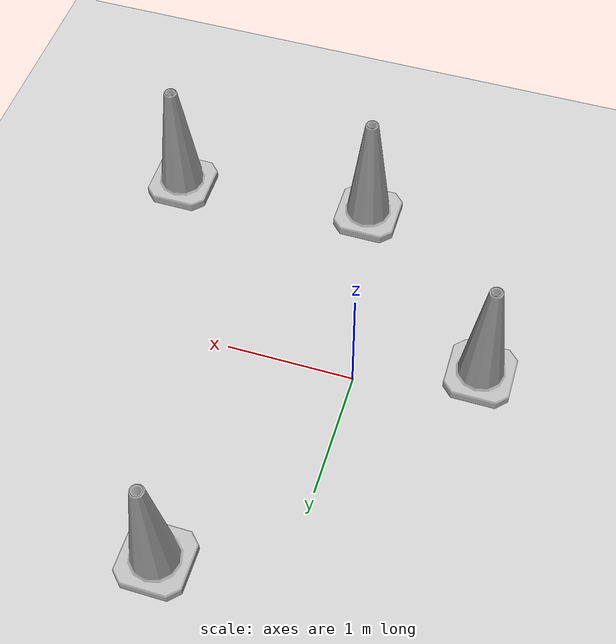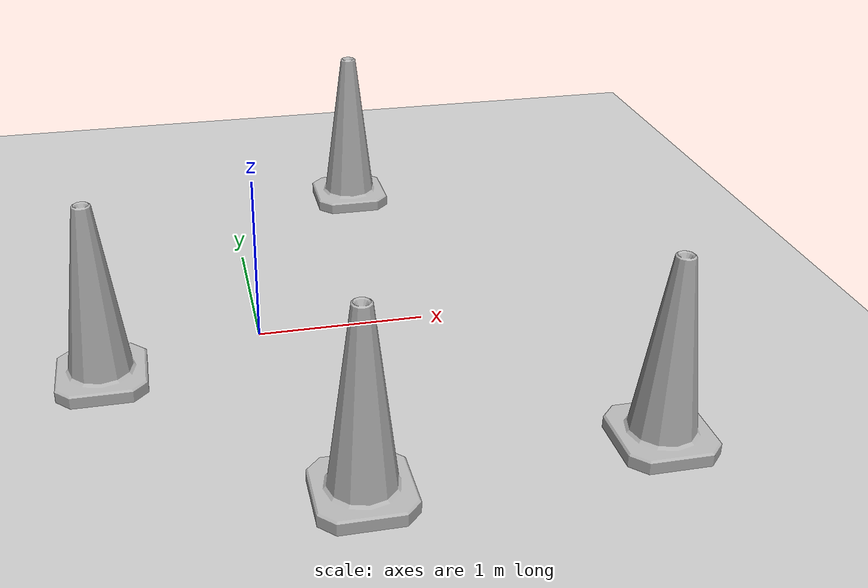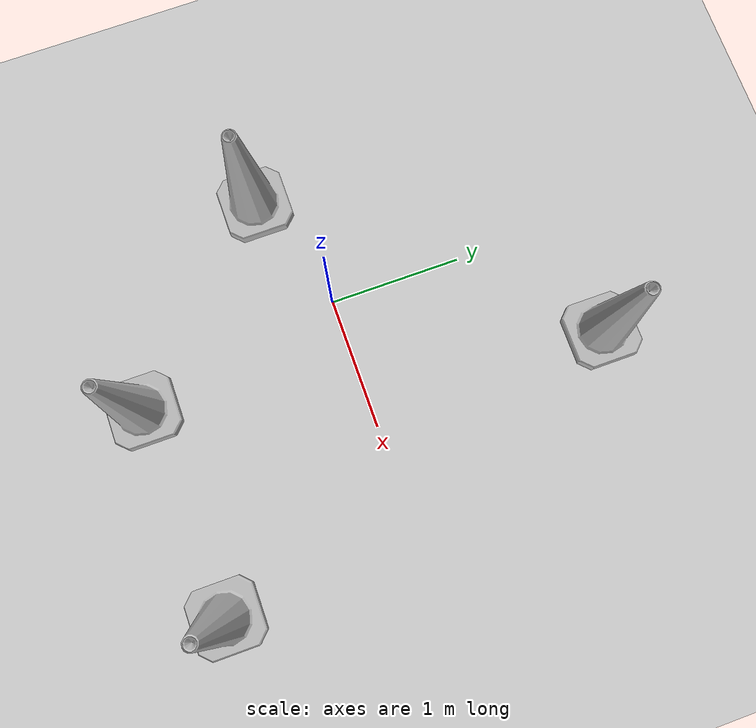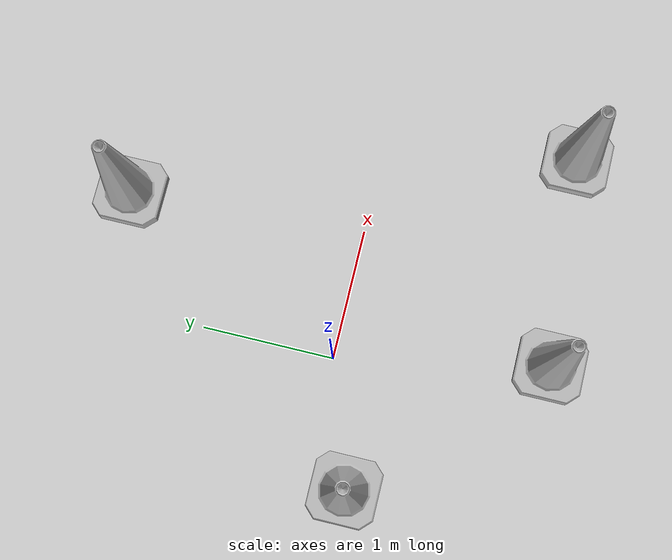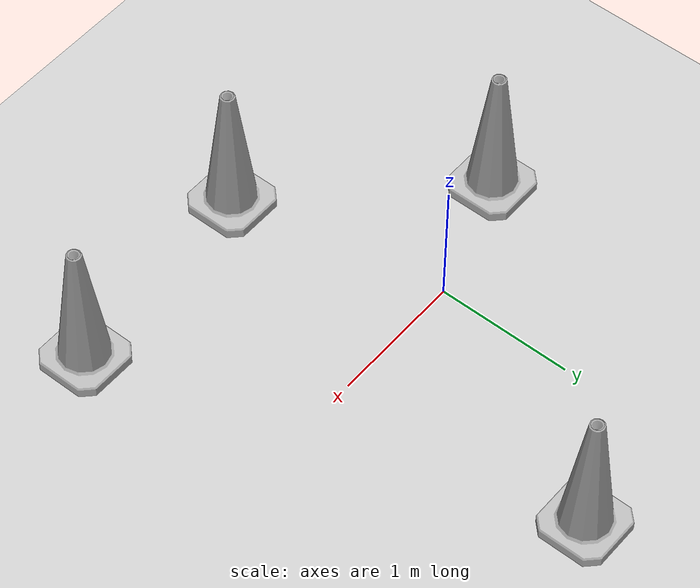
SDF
<sdf version="1.6">
 <world name="default">
  <light name="sun" type="directional">
   <pose>0 0 10 0 -0 0</pose>
   <diffuse>0.8 0.8 0.8 1</diffuse>
   <specular>0.2 0.2 0.2 1</specular>
   <attenuation>
    <range>1000</range>
    <constant>0.9</constant>
    <linear>0.01</linear>
    <quadratic>0.001</quadratic>
   </attenuation>
   <direction>-0.5 0.1 -0.9</direction>
  </light>
  <model name="ground_plane">
   <static>1</static>
   <link name="link">
    <collision name="collision">
     <geometry><plane><normal>0 0 1</normal><size>100 100</size></plane></geometry>
     <surface><friction><ode><mu>100</mu><mu2>50</mu2></ode></friction></surface>
    </collision>
    <visual name="visual">
     <cast_shadows>0</cast_shadows>
     <geometry><plane><normal>0 0 1</normal><size>100 100</size></plane></geometry>
     <material>
      <script><uri>file://media/materials/scripts/gazebo.material</uri><name>Gazebo/Grey</name></script>
     </material>
    </visual>
   </link>
  </model>
  <gravity>0 0 -9.8</gravity>
  <magnetic_field>6e-06 2.3e-05 -4.2e-05</magnetic_field>
  <atmosphere type="adiabatic"/>
  <physics name="default_physics" default="0" type="ode">
   <max_step_size>0.001</max_step_size>
   <real_time_factor>1</real_time_factor>
   <real_time_update_rate>1000</real_time_update_rate>
  </physics>
  <scene><ambient>0.4 0.4 0.4 1</ambient><background>0.7 0.7 0.7 1</background><shadows>1</shadows></scene>
  <spherical_coordinates>
   <surface_model>EARTH_WGS84</surface_model>
   <latitude_deg>0</latitude_deg>
   <longitude_deg>0</longitude_deg>
   <elevation>0</elevation>
   <heading_deg>0</heading_deg>
  </spherical_coordinates>
  <model name="Construction Cone">
   <link name="link">
    <collision name="collision">
     <geometry>
      <mesh><scale>10 10 10</scale><uri>model://construction_cone/meshes/construction_cone.dae</uri></mesh>
     </geometry>
    </collision>
    <visual name="visual">
     <geometry>
      <mesh><scale>10 10 10</scale><uri>model://construction_cone/meshes/construction_cone.dae</uri></mesh>
     </geometry>
    </visual>
    <inertial>
     <inertia><ixx>1</ixx><ixy>0</ixy><ixz>0</ixz><iyy>1</iyy><iyz>0</iyz><izz>1</izz></inertia>
     <mass>1</mass>
    </inertial>
   </link>
   <pose>0.319539 -1.57605 0 0 -0 0</pose>
  </model>
  <model name="Construction Cone_0">
   <link name="link">
    <collision name="collision">
     <geometry>
      <mesh><scale>10 10 10</scale><uri>model://construction_cone/meshes/construction_cone.dae</uri></mesh>
     </geometry>
    </collision>
    <visual name="visual">
     <geometry>
      <mesh><scale>10 10 10</scale><uri>model://construction_cone/meshes/construction_cone.dae</uri></mesh>
     </geometry>
    </visual>
    <inertial>
     <inertia><ixx>1</ixx><ixy>0</ixy><ixz>0</ixz><iyy>1</iyy><iyz>0</iyz><izz>1</izz></inertia>
     <mass>1</mass>
    </inertial>
   </link>
   <pose>-0.9199 -0.30899 -4e-06 4e-06 -1e-06 0</pose>
  </model>
  <model name="Construction Cone_1">
   <link name="link">
    <collision name="collision">
     <geometry>
      <mesh><scale>10 10 10</scale><uri>model://construction_cone/meshes/construction_cone.dae</uri></mesh>
     </geometry>
    </collision>
    <visual name="visual">
     <geometry>
      <mesh><scale>10 10 10</scale><uri>model://construction_cone/meshes/construction_cone.dae</uri></mesh>
     </geometry>
    </visual>
    <inertial>
     <inertia><ixx>1</ixx><ixy>0</ixy><ixz>0</ixz><iyy>1</iyy><iyz>0</iyz><izz>1</izz></inertia>
     <mass>1</mass>
    </inertial>
   </link>
   <pose>1.91781 -1.45023 0 0 -0 0</pose>
  </model>
  <model name="Construction Cone_2">
   <link name="link">
    <collision name="collision">
     <geometry>
      <mesh><scale>10 10 10</scale><uri>model://construction_cone/meshes/construction_cone.dae</uri></mesh>
     </geometry>
    </collision>
    <visual name="visual">
     <geometry>
      <mesh><scale>10 10 10</scale><uri>model://construction_cone/meshes/construction_cone.dae</uri></mesh>
     </geometry>
    </visual>
    <inertial>
     <inertia><ixx>1</ixx><ixy>0</ixy><ixz>0</ixz><iyy>1</iyy><iyz>0</iyz><izz>1</izz></inertia>
     <mass>1</mass>
    </inertial>
   </link>
   <pose>0.884241 1.80632 0 0 -1e-06 0</pose>
  </model>
 </world>
</sdf>
